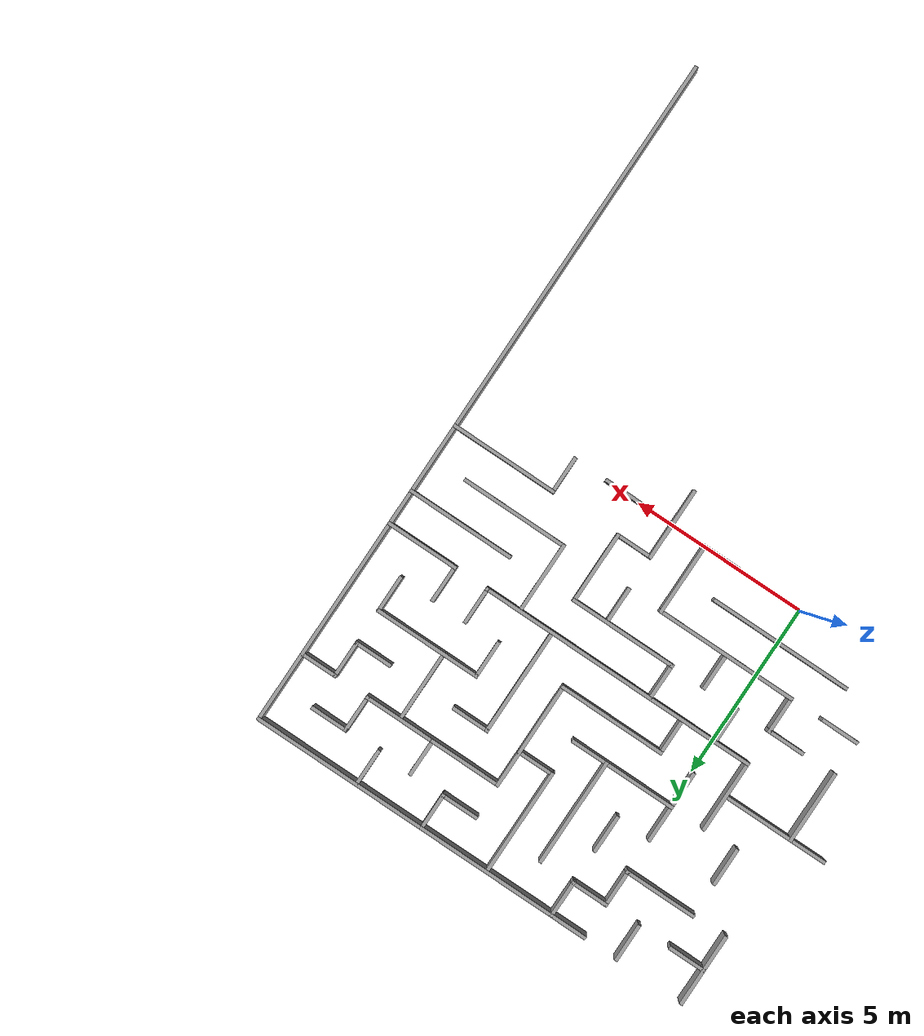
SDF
<sdf version="1.7">
 <model name="turtlebot3_maze_3">
  <link name="Wall_0">
   <collision name="Wall_0_Collision">
    <geometry><box><size>4.1 0.1 0.4</size></box></geometry>
    <pose>0 0 0.2 0 -0 0</pose>
   </collision>
   <visual name="Wall_0_Visual">
    <pose>0 0 0.2 0 -0 0</pose>
    <geometry><box><size>4.1 0.1 0.4</size></box></geometry>
    <material>
     <script><uri>file://media/materials/scripts/gazebo.material</uri><name>Gazebo/Grey</name></script>
     <ambient>1 1 1 1</ambient>
    </material>
    <meta><layer>0</layer></meta>
   </visual>
   <pose>0 1 0 0 -0 3.14159</pose>
  </link>
  <link name="Wall_11">
   <collision name="Wall_11_Collision">
    <geometry><box><size>1.1 0.1 0.4</size></box></geometry>
    <pose>0 0 0.2 0 -0 0</pose>
   </collision>
   <visual name="Wall_11_Visual">
    <pose>0 0 0.2 0 -0 0</pose>
    <geometry><box><size>1.1 0.1 0.4</size></box></geometry>
    <material>
     <script><uri>file://media/materials/scripts/gazebo.material</uri><name>Gazebo/Grey</name></script>
     <ambient>1 1 1 1</ambient>
    </material>
    <meta><layer>0</layer></meta>
   </visual>
   <pose>-2.5 2 0 0 -0 0</pose>
  </link>
  <link name="Wall_144">
   <collision name="Wall_144_Collision">
    <geometry><box><size>1.1 0.1 0.4</size></box></geometry>
    <pose>0 0 0.2 0 -0 0</pose>
   </collision>
   <visual name="Wall_144_Visual">
    <pose>0 0 0.2 0 -0 0</pose>
    <geometry><box><size>1.1 0.1 0.4</size></box></geometry>
    <material>
     <script><uri>file://media/materials/scripts/gazebo.material</uri><name>Gazebo/Grey</name></script>
     <ambient>1 1 1 1</ambient>
    </material>
    <meta><layer>0</layer></meta>
   </visual>
   <pose>1 7.5 0 0 -0 1.5708</pose>
  </link>
  <link name="Wall_151">
   <collision name="Wall_151_Collision">
    <geometry><box><size>2.1 0.1 0.4</size></box></geometry>
    <pose>0 0 0.2 0 -0 0</pose>
   </collision>
   <visual name="Wall_151_Visual">
    <pose>0 0 0.2 0 -0 0</pose>
    <geometry><box><size>2.1 0.1 0.4</size></box></geometry>
    <material>
     <script><uri>file://media/materials/scripts/gazebo.material</uri><name>Gazebo/Grey</name></script>
     <ambient>1 1 1 1</ambient>
    </material>
    <meta><layer>0</layer></meta>
   </visual>
   <pose>-3 4 0 0 -0 1.5708</pose>
  </link>
  <link name="Wall_153">
   <collision name="Wall_153_Collision">
    <geometry><box><size>1.1 0.1 0.4</size></box></geometry>
    <pose>0 0 0.2 0 -0 0</pose>
   </collision>
   <visual name="Wall_153_Visual">
    <pose>0 0 0.2 0 -0 0</pose>
    <geometry><box><size>1.1 0.1 0.4</size></box></geometry>
    <material>
     <script><uri>file://media/materials/scripts/gazebo.material</uri><name>Gazebo/Grey</name></script>
     <ambient>1 1 1 1</ambient>
    </material>
    <meta><layer>0</layer></meta>
   </visual>
   <pose>7 4.5 0 0 -0 -1.5708</pose>
  </link>
  <link name="Wall_154">
   <collision name="Wall_154_Collision">
    <geometry><box><size>8.1 0.1 0.4</size></box></geometry>
    <pose>0 0 0.2 0 -0 0</pose>
   </collision>
   <visual name="Wall_154_Visual">
    <pose>0 0 0.2 0 -0 0</pose>
    <geometry><box><size>8.1 0.1 0.4</size></box></geometry>
    <material>
     <script><uri>file://media/materials/scripts/gazebo.material</uri><name>Gazebo/Grey</name></script>
     <ambient>1 1 1 1</ambient>
    </material>
    <meta><layer>0</layer></meta>
   </visual>
   <pose>3 4 0 0 -0 3.14159</pose>
  </link>
  <link name="Wall_155">
   <collision name="Wall_155_Collision">
    <geometry><box><size>2.1 0.1 0.4</size></box></geometry>
    <pose>0 0 0.2 0 -0 0</pose>
   </collision>
   <visual name="Wall_155_Visual">
    <pose>0 0 0.2 0 -0 0</pose>
    <geometry><box><size>2.1 0.1 0.4</size></box></geometry>
    <material>
     <script><uri>file://media/materials/scripts/gazebo.material</uri><name>Gazebo/Grey</name></script>
     <ambient>1 1 1 1</ambient>
    </material>
    <meta><layer>0</layer></meta>
   </visual>
   <pose>-1 5 0 0 -0 1.5708</pose>
  </link>
  <link name="Wall_157">
   <collision name="Wall_157_Collision">
    <geometry><box><size>3.1 0.1 0.4</size></box></geometry>
    <pose>0 0 0.2 0 -0 0</pose>
   </collision>
   <visual name="Wall_157_Visual">
    <pose>0 0 0.2 0 -0 0</pose>
    <geometry><box><size>3.1 0.1 0.4</size></box></geometry>
    <material>
     <script><uri>file://media/materials/scripts/gazebo.material</uri><name>Gazebo/Grey</name></script>
     <ambient>1 1 1 1</ambient>
    </material>
    <meta><layer>0</layer></meta>
   </visual>
   <pose>-2.5 5 0 0 -0 0</pose>
  </link>
  <link name="Wall_179">
   <collision name="Wall_179_Collision">
    <geometry><box><size>1.1 0.1 0.4</size></box></geometry>
    <pose>0 0 0.2 0 -0 0</pose>
   </collision>
   <visual name="Wall_179_Visual">
    <pose>0 0 0.2 0 -0 0</pose>
    <geometry><box><size>1.1 0.1 0.4</size></box></geometry>
    <material>
     <script><uri>file://media/materials/scripts/gazebo.material</uri><name>Gazebo/Grey</name></script>
     <ambient>1 1 1 1</ambient>
    </material>
    <meta><layer>0</layer></meta>
   </visual>
   <pose>-1 9.5 0 0 -0 -1.5708</pose>
  </link>
  <link name="Wall_181">
   <collision name="Wall_181_Collision">
    <geometry><box><size>2.1 0.1 0.4</size></box></geometry>
    <pose>0 0 0.2 0 -0 0</pose>
   </collision>
   <visual name="Wall_181_Visual">
    <pose>0 0 0.2 0 -0 0</pose>
    <geometry><box><size>2.1 0.1 0.4</size></box></geometry>
    <material>
     <script><uri>file://media/materials/scripts/gazebo.material</uri><name>Gazebo/Grey</name></script>
     <ambient>1 1 1 1</ambient>
    </material>
    <meta><layer>0</layer></meta>
   </visual>
   <pose>-3 9 0 0 -0 -1.5708</pose>
  </link>
  <link name="Wall_183">
   <collision name="Wall_183_Collision">
    <geometry><box><size>1.1 0.1 0.4</size></box></geometry>
    <pose>0 0 0.2 0 -0 0</pose>
   </collision>
   <visual name="Wall_183_Visual">
    <pose>0 0 0.2 0 -0 0</pose>
    <geometry><box><size>1.1 0.1 0.4</size></box></geometry>
    <material>
     <script><uri>file://media/materials/scripts/gazebo.material</uri><name>Gazebo/Grey</name></script>
     <ambient>1 1 1 1</ambient>
    </material>
    <meta><layer>0</layer></meta>
   </visual>
   <pose>-2.5 9 0 0 -0 0</pose>
  </link>
  <link name="Wall_185">
   <collision name="Wall_185_Collision">
    <geometry><box><size>1.1 0.1 0.4</size></box></geometry>
    <pose>0 0 0.2 0 -0 0</pose>
   </collision>
   <visual name="Wall_185_Visual">
    <pose>0 0 0.2 0 -0 0</pose>
    <geometry><box><size>1.1 0.1 0.4</size></box></geometry>
    <material>
     <script><uri>file://media/materials/scripts/gazebo.material</uri><name>Gazebo/Grey</name></script>
     <ambient>1 1 1 1</ambient>
    </material>
    <meta><layer>0</layer></meta>
   </visual>
   <pose>1 9.5 0 0 -0 -1.5708</pose>
  </link>
  <link name="Wall_186">
   <collision name="Wall_186_Collision">
    <geometry><box><size>1.1 0.1 0.4</size></box></geometry>
    <pose>0 0 0.2 0 -0 0</pose>
   </collision>
   <visual name="Wall_186_Visual">
    <pose>0 0 0.2 0 -0 0</pose>
    <geometry><box><size>1.1 0.1 0.4</size></box></geometry>
    <material>
     <script><uri>file://media/materials/scripts/gazebo.material</uri><name>Gazebo/Grey</name></script>
     <ambient>1 1 1 1</ambient>
    </material>
    <meta><layer>0</layer></meta>
   </visual>
   <pose>0.5 9 0 0 -0 3.14159</pose>
  </link>
  <link name="Wall_187">
   <collision name="Wall_187_Collision">
    <geometry><box><size>1.1 0.1 0.4</size></box></geometry>
    <pose>0 0 0.2 0 -0 0</pose>
   </collision>
   <visual name="Wall_187_Visual">
    <pose>0 0 0.2 0 -0 0</pose>
    <geometry><box><size>1.1 0.1 0.4</size></box></geometry>
    <material>
     <script><uri>file://media/materials/scripts/gazebo.material</uri><name>Gazebo/Grey</name></script>
     <ambient>1 1 1 1</ambient>
    </material>
    <meta><layer>0</layer></meta>
   </visual>
   <pose>0 8.5 0 0 -0 -1.5708</pose>
  </link>
  <link name="Wall_188">
   <collision name="Wall_188_Collision">
    <geometry><box><size>2.1 0.1 0.4</size></box></geometry>
    <pose>0 0 0.2 0 -0 0</pose>
   </collision>
   <visual name="Wall_188_Visual">
    <pose>0 0 0.2 0 -0 0</pose>
    <geometry><box><size>2.1 0.1 0.4</size></box></geometry>
    <material>
     <script><uri>file://media/materials/scripts/gazebo.material</uri><name>Gazebo/Grey</name></script>
     <ambient>1 1 1 1</ambient>
    </material>
    <meta><layer>0</layer></meta>
   </visual>
   <pose>-1 8 0 0 -0 3.14159</pose>
  </link>
  <link name="Wall_194">
   <collision name="Wall_194_Collision">
    <geometry><box><size>1.1 0.1 0.4</size></box></geometry>
    <pose>0 0 0.2 0 -0 0</pose>
   </collision>
   <visual name="Wall_194_Visual">
    <pose>0 0 0.2 0 -0 0</pose>
    <geometry><box><size>1.1 0.1 0.4</size></box></geometry>
    <material>
     <script><uri>file://media/materials/scripts/gazebo.material</uri><name>Gazebo/Grey</name></script>
     <ambient>1 1 1 1</ambient>
    </material>
    <meta><layer>0</layer></meta>
   </visual>
   <pose>-2 6.5 0 0 -0 -1.5708</pose>
  </link>
  <link name="Wall_196">
   <collision name="Wall_196_Collision">
    <geometry><box><size>10.1 0.1 0.4</size></box></geometry>
    <pose>0 0 0.2 0 -0 0</pose>
   </collision>
   <visual name="Wall_196_Visual">
    <pose>0 0 0.2 0 -0 0</pose>
    <geometry><box><size>10.1 0.1 0.4</size></box></geometry>
    <material>
     <script><uri>file://media/materials/scripts/gazebo.material</uri><name>Gazebo/Grey</name></script>
     <ambient>1 1 1 1</ambient>
    </material>
    <meta><layer>0</layer></meta>
   </visual>
   <pose>5 10 0 0 -0 3.14159</pose>
  </link>
  <link name="Wall_198">
   <collision name="Wall_198_Collision">
    <geometry><box><size>3.1 0.1 0.4</size></box></geometry>
    <pose>0 0 0.2 0 -0 0</pose>
   </collision>
   <visual name="Wall_198_Visual">
    <pose>0 0 0.2 0 -0 0</pose>
    <geometry><box><size>3.1 0.1 0.4</size></box></geometry>
    <material>
     <script><uri>file://media/materials/scripts/gazebo.material</uri><name>Gazebo/Grey</name></script>
     <ambient>1 1 1 1</ambient>
    </material>
    <meta><layer>0</layer></meta>
   </visual>
   <pose>2 7.5 0 0 -0 -1.5708</pose>
  </link>
  <link name="Wall_2">
   <collision name="Wall_2_Collision">
    <geometry><box><size>1.1 0.1 0.4</size></box></geometry>
    <pose>0 0 0.2 0 -0 0</pose>
   </collision>
   <visual name="Wall_2_Visual">
    <pose>0 0 0.2 0 -0 0</pose>
    <geometry><box><size>1.1 0.1 0.4</size></box></geometry>
    <material>
     <script><uri>file://media/materials/scripts/gazebo.material</uri><name>Gazebo/Grey</name></script>
     <ambient>1 1 1 1</ambient>
    </material>
    <meta><layer>0</layer></meta>
   </visual>
   <pose>2.5 0 0 0 -0 0</pose>
  </link>
  <link name="Wall_200">
   <collision name="Wall_200_Collision">
    <geometry><box><size>3.1 0.1 0.4</size></box></geometry>
    <pose>0 0 0.2 0 -0 0</pose>
   </collision>
   <visual name="Wall_200_Visual">
    <pose>0 0 0.2 0 -0 0</pose>
    <geometry><box><size>3.1 0.1 0.4</size></box></geometry>
    <material>
     <script><uri>file://media/materials/scripts/gazebo.material</uri><name>Gazebo/Grey</name></script>
     <ambient>1 1 1 1</ambient>
    </material>
    <meta><layer>0</layer></meta>
   </visual>
   <pose>1.5 6 0 0 -0 3.14159</pose>
  </link>
  <link name="Wall_202">
   <collision name="Wall_202_Collision">
    <geometry><box><size>2.1 0.1 0.4</size></box></geometry>
    <pose>0 0 0.2 0 -0 0</pose>
   </collision>
   <visual name="Wall_202_Visual">
    <pose>0 0 0.2 0 -0 0</pose>
    <geometry><box><size>2.1 0.1 0.4</size></box></geometry>
    <material>
     <script><uri>file://media/materials/scripts/gazebo.material</uri><name>Gazebo/Grey</name></script>
     <ambient>1 1 1 1</ambient>
    </material>
    <meta><layer>0</layer></meta>
   </visual>
   <pose>0 6 0 0 -0 -1.5708</pose>
  </link>
  <link name="Wall_204">
   <collision name="Wall_204_Collision">
    <geometry><box><size>1.1 0.1 0.4</size></box></geometry>
    <pose>0 0 0.2 0 -0 0</pose>
   </collision>
   <visual name="Wall_204_Visual">
    <pose>0 0 0.2 0 -0 0</pose>
    <geometry><box><size>1.1 0.1 0.4</size></box></geometry>
    <material>
     <script><uri>file://media/materials/scripts/gazebo.material</uri><name>Gazebo/Grey</name></script>
     <ambient>1 1 1 1</ambient>
    </material>
    <meta><layer>0</layer></meta>
   </visual>
   <pose>1 4.5 0 0 -0 1.5708</pose>
  </link>
  <link name="Wall_205">
   <collision name="Wall_205_Collision">
    <geometry><box><size>3.1 0.1 0.4</size></box></geometry>
    <pose>0 0 0.2 0 -0 0</pose>
   </collision>
   <visual name="Wall_205_Visual">
    <pose>0 0 0.2 0 -0 0</pose>
    <geometry><box><size>3.1 0.1 0.4</size></box></geometry>
    <material>
     <script><uri>file://media/materials/scripts/gazebo.material</uri><name>Gazebo/Grey</name></script>
     <ambient>1 1 1 1</ambient>
    </material>
    <meta><layer>0</layer></meta>
   </visual>
   <pose>2.5 5 0 0 -0 0</pose>
  </link>
  <link name="Wall_206">
   <collision name="Wall_206_Collision">
    <geometry><box><size>3.1 0.1 0.4</size></box></geometry>
    <pose>0 0 0.2 0 -0 0</pose>
   </collision>
   <visual name="Wall_206_Visual">
    <pose>0 0 0.2 0 -0 0</pose>
    <geometry><box><size>3.1 0.1 0.4</size></box></geometry>
    <material>
     <script><uri>file://media/materials/scripts/gazebo.material</uri><name>Gazebo/Grey</name></script>
     <ambient>1 1 1 1</ambient>
    </material>
    <meta><layer>0</layer></meta>
   </visual>
   <pose>4 6.5 0 0 -0 1.5708</pose>
  </link>
  <link name="Wall_207">
   <collision name="Wall_207_Collision">
    <geometry><box><size>4.1 0.1 0.4</size></box></geometry>
    <pose>0 0 0.2 0 -0 0</pose>
   </collision>
   <visual name="Wall_207_Visual">
    <pose>0 0 0.2 0 -0 0</pose>
    <geometry><box><size>4.1 0.1 0.4</size></box></geometry>
    <material>
     <script><uri>file://media/materials/scripts/gazebo.material</uri><name>Gazebo/Grey</name></script>
     <ambient>1 1 1 1</ambient>
    </material>
    <meta><layer>0</layer></meta>
   </visual>
   <pose>6 8 0 0 -0 0</pose>
  </link>
  <link name="Wall_208">
   <collision name="Wall_208_Collision">
    <geometry><box><size>1.1 0.1 0.4</size></box></geometry>
    <pose>0 0 0.2 0 -0 0</pose>
   </collision>
   <visual name="Wall_208_Visual">
    <pose>0 0 0.2 0 -0 0</pose>
    <geometry><box><size>1.1 0.1 0.4</size></box></geometry>
    <material>
     <script><uri>file://media/materials/scripts/gazebo.material</uri><name>Gazebo/Grey</name></script>
     <ambient>1 1 1 1</ambient>
    </material>
    <meta><layer>0</layer></meta>
   </visual>
   <pose>8 8.5 0 0 -0 1.5708</pose>
  </link>
  <link name="Wall_209">
   <collision name="Wall_209_Collision">
    <geometry><box><size>1.1 0.1 0.4</size></box></geometry>
    <pose>0 0 0.2 0 -0 0</pose>
   </collision>
   <visual name="Wall_209_Visual">
    <pose>0 0 0.2 0 -0 0</pose>
    <geometry><box><size>1.1 0.1 0.4</size></box></geometry>
    <material>
     <script><uri>file://media/materials/scripts/gazebo.material</uri><name>Gazebo/Grey</name></script>
     <ambient>1 1 1 1</ambient>
    </material>
    <meta><layer>0</layer></meta>
   </visual>
   <pose>8.5 9 0 0 -0 0</pose>
  </link>
  <link name="Wall_211">
   <collision name="Wall_211_Collision">
    <geometry><box><size>1.1 0.1 0.4</size></box></geometry>
    <pose>0 0 0.2 0 -0 0</pose>
   </collision>
   <visual name="Wall_211_Visual">
    <pose>0 0 0.2 0 -0 0</pose>
    <geometry><box><size>1.1 0.1 0.4</size></box></geometry>
    <material>
     <script><uri>file://media/materials/scripts/gazebo.material</uri><name>Gazebo/Grey</name></script>
     <ambient>1 1 1 1</ambient>
    </material>
    <meta><layer>0</layer></meta>
   </visual>
   <pose>7 9.5 0 0 -0 -1.5708</pose>
  </link>
  <link name="Wall_213">
   <collision name="Wall_213_Collision">
    <geometry><box><size>1.1 0.1 0.4</size></box></geometry>
    <pose>0 0 0.2 0 -0 0</pose>
   </collision>
   <visual name="Wall_213_Visual">
    <pose>0 0 0.2 0 -0 0</pose>
    <geometry><box><size>1.1 0.1 0.4</size></box></geometry>
    <material>
     <script><uri>file://media/materials/scripts/gazebo.material</uri><name>Gazebo/Grey</name></script>
     <ambient>1 1 1 1</ambient>
    </material>
    <meta><layer>0</layer></meta>
   </visual>
   <pose>6 8.5 0 0 -0 -1.5708</pose>
  </link>
  <link name="Wall_215">
   <collision name="Wall_215_Collision">
    <geometry><box><size>1.1 0.1 0.4</size></box></geometry>
    <pose>0 0 0.2 0 -0 0</pose>
   </collision>
   <visual name="Wall_215_Visual">
    <pose>0 0 0.2 0 -0 0</pose>
    <geometry><box><size>1.1 0.1 0.4</size></box></geometry>
    <material>
     <script><uri>file://media/materials/scripts/gazebo.material</uri><name>Gazebo/Grey</name></script>
     <ambient>1 1 1 1</ambient>
    </material>
    <meta><layer>0</layer></meta>
   </visual>
   <pose>5 9.5 0 0 -0 -1.5708</pose>
  </link>
  <link name="Wall_216">
   <collision name="Wall_216_Collision">
    <geometry><box><size>1.1 0.1 0.4</size></box></geometry>
    <pose>0 0 0.2 0 -0 0</pose>
   </collision>
   <visual name="Wall_216_Visual">
    <pose>0 0 0.2 0 -0 0</pose>
    <geometry><box><size>1.1 0.1 0.4</size></box></geometry>
    <material>
     <script><uri>file://media/materials/scripts/gazebo.material</uri><name>Gazebo/Grey</name></script>
     <ambient>1 1 1 1</ambient>
    </material>
    <meta><layer>0</layer></meta>
   </visual>
   <pose>4.5 9 0 0 -0 3.14159</pose>
  </link>
  <link name="Wall_219">
   <collision name="Wall_219_Collision">
    <geometry><box><size>1.1 0.1 0.4</size></box></geometry>
    <pose>0 0 0.2 0 -0 0</pose>
   </collision>
   <visual name="Wall_219_Visual">
    <pose>0 0 0.2 0 -0 0</pose>
    <geometry><box><size>1.1 0.1 0.4</size></box></geometry>
    <material>
     <script><uri>file://media/materials/scripts/gazebo.material</uri><name>Gazebo/Grey</name></script>
     <ambient>1 1 1 1</ambient>
    </material>
    <meta><layer>0</layer></meta>
   </visual>
   <pose>3.5 7 0 0 -0 0</pose>
  </link>
  <link name="Wall_221">
   <collision name="Wall_221_Collision">
    <geometry><box><size>1.1 0.1 0.4</size></box></geometry>
    <pose>0 0 0.2 0 -0 0</pose>
   </collision>
   <visual name="Wall_221_Visual">
    <pose>0 0 0.2 0 -0 0</pose>
    <geometry><box><size>1.1 0.1 0.4</size></box></geometry>
    <material>
     <script><uri>file://media/materials/scripts/gazebo.material</uri><name>Gazebo/Grey</name></script>
     <ambient>1 1 1 1</ambient>
    </material>
    <meta><layer>0</layer></meta>
   </visual>
   <pose>9.5 8 0 0 -0 3.14159</pose>
  </link>
  <link name="Wall_222">
   <collision name="Wall_222_Collision">
    <geometry><box><size>1.1 0.1 0.4</size></box></geometry>
    <pose>0 0 0.2 0 -0 0</pose>
   </collision>
   <visual name="Wall_222_Visual">
    <pose>0 0 0.2 0 -0 0</pose>
    <geometry><box><size>1.1 0.1 0.4</size></box></geometry>
    <material>
     <script><uri>file://media/materials/scripts/gazebo.material</uri><name>Gazebo/Grey</name></script>
     <ambient>1 1 1 1</ambient>
    </material>
    <meta><layer>0</layer></meta>
   </visual>
   <pose>9 7.5 0 0 -0 -1.5708</pose>
  </link>
  <link name="Wall_223">
   <collision name="Wall_223_Collision">
    <geometry><box><size>1.1 0.1 0.4</size></box></geometry>
    <pose>0 0 0.2 0 -0 0</pose>
   </collision>
   <visual name="Wall_223_Visual">
    <pose>0 0 0.2 0 -0 0</pose>
    <geometry><box><size>1.1 0.1 0.4</size></box></geometry>
    <material>
     <script><uri>file://media/materials/scripts/gazebo.material</uri><name>Gazebo/Grey</name></script>
     <ambient>1 1 1 1</ambient>
    </material>
    <meta><layer>0</layer></meta>
   </visual>
   <pose>8.5 7 0 0 -0 3.14159</pose>
  </link>
  <link name="Wall_225">
   <collision name="Wall_225_Collision">
    <geometry><box><size>1.1 0.1 0.4</size></box></geometry>
    <pose>0 0 0.2 0 -0 0</pose>
   </collision>
   <visual name="Wall_225_Visual">
    <pose>0 0 0.2 0 -0 0</pose>
    <geometry><box><size>1.1 0.1 0.4</size></box></geometry>
    <material>
     <script><uri>file://media/materials/scripts/gazebo.material</uri><name>Gazebo/Grey</name></script>
     <ambient>1 1 1 1</ambient>
    </material>
    <meta><layer>0</layer></meta>
   </visual>
   <pose>5.5 7 0 0 -0 3.14159</pose>
  </link>
  <link name="Wall_226">
   <collision name="Wall_226_Collision">
    <geometry><box><size>3.1 0.1 0.4</size></box></geometry>
    <pose>0 0 0.2 0 -0 0</pose>
   </collision>
   <visual name="Wall_226_Visual">
    <pose>0 0 0.2 0 -0 0</pose>
    <geometry><box><size>3.1 0.1 0.4</size></box></geometry>
    <material>
     <script><uri>file://media/materials/scripts/gazebo.material</uri><name>Gazebo/Grey</name></script>
     <ambient>1 1 1 1</ambient>
    </material>
    <meta><layer>0</layer></meta>
   </visual>
   <pose>5 5.5 0 0 -0 -1.5708</pose>
  </link>
  <link name="Wall_228">
   <collision name="Wall_228_Collision">
    <geometry><box><size>1.1 0.1 0.4</size></box></geometry>
    <pose>0 0 0.2 0 -0 0</pose>
   </collision>
   <visual name="Wall_228_Visual">
    <pose>0 0 0.2 0 -0 0</pose>
    <geometry><box><size>1.1 0.1 0.4</size></box></geometry>
    <material>
     <script><uri>file://media/materials/scripts/gazebo.material</uri><name>Gazebo/Grey</name></script>
     <ambient>1 1 1 1</ambient>
    </material>
    <meta><layer>0</layer></meta>
   </visual>
   <pose>6 5.5 0 0 -0 1.5708</pose>
  </link>
  <link name="Wall_229">
   <collision name="Wall_229_Collision">
    <geometry><box><size>3.1 0.1 0.4</size></box></geometry>
    <pose>0 0 0.2 0 -0 0</pose>
   </collision>
   <visual name="Wall_229_Visual">
    <pose>0 0 0.2 0 -0 0</pose>
    <geometry><box><size>3.1 0.1 0.4</size></box></geometry>
    <material>
     <script><uri>file://media/materials/scripts/gazebo.material</uri><name>Gazebo/Grey</name></script>
     <ambient>1 1 1 1</ambient>
    </material>
    <meta><layer>0</layer></meta>
   </visual>
   <pose>7.5 6 0 0 -0 0</pose>
  </link>
  <link name="Wall_230">
   <collision name="Wall_230_Collision">
    <geometry><box><size>1.1 0.1 0.4</size></box></geometry>
    <pose>0 0 0.2 0 -0 0</pose>
   </collision>
   <visual name="Wall_230_Visual">
    <pose>0 0 0.2 0 -0 0</pose>
    <geometry><box><size>1.1 0.1 0.4</size></box></geometry>
    <material>
     <script><uri>file://media/materials/scripts/gazebo.material</uri><name>Gazebo/Grey</name></script>
     <ambient>1 1 1 1</ambient>
    </material>
    <meta><layer>0</layer></meta>
   </visual>
   <pose>9 5.5 0 0 -0 -1.5708</pose>
  </link>
  <link name="Wall_232">
   <collision name="Wall_232_Collision">
    <geometry><box><size>2.1 0.1 0.4</size></box></geometry>
    <pose>0 0 0.2 0 -0 0</pose>
   </collision>
   <visual name="Wall_232_Visual">
    <pose>0 0 0.2 0 -0 0</pose>
    <geometry><box><size>2.1 0.1 0.4</size></box></geometry>
    <material>
     <script><uri>file://media/materials/scripts/gazebo.material</uri><name>Gazebo/Grey</name></script>
     <ambient>1 1 1 1</ambient>
    </material>
    <meta><layer>0</layer></meta>
   </visual>
   <pose>7 7 0 0 -0 1.5708</pose>
  </link>
  <link name="Wall_234">
   <collision name="Wall_234_Collision">
    <geometry><box><size>1.1 0.1 0.4</size></box></geometry>
    <pose>0 0 0.2 0 -0 0</pose>
   </collision>
   <visual name="Wall_234_Visual">
    <pose>0 0 0.2 0 -0 0</pose>
    <geometry><box><size>1.1 0.1 0.4</size></box></geometry>
    <material>
     <script><uri>file://media/materials/scripts/gazebo.material</uri><name>Gazebo/Grey</name></script>
     <ambient>1 1 1 1</ambient>
    </material>
    <meta><layer>0</layer></meta>
   </visual>
   <pose>8 4.5 0 0 -0 -1.5708</pose>
  </link>
  <link name="Wall_235">
   <collision name="Wall_235_Collision">
    <geometry><box><size>2.1 0.1 0.4</size></box></geometry>
    <pose>0 0 0.2 0 -0 0</pose>
   </collision>
   <visual name="Wall_235_Visual">
    <pose>0 0 0.2 0 -0 0</pose>
    <geometry><box><size>2.1 0.1 0.4</size></box></geometry>
    <material>
     <script><uri>file://media/materials/scripts/gazebo.material</uri><name>Gazebo/Grey</name></script>
     <ambient>1 1 1 1</ambient>
    </material>
    <meta><layer>0</layer></meta>
   </visual>
   <pose>9 4 0 0 -0 0</pose>
  </link>
  <link name="Wall_237">
   <collision name="Wall_237_Collision">
    <geometry><box><size>3.1 0.1 0.4</size></box></geometry>
    <pose>0 0 0.2 0 -0 0</pose>
   </collision>
   <visual name="Wall_237_Visual">
    <pose>0 0 0.2 0 -0 0</pose>
    <geometry><box><size>3.1 0.1 0.4</size></box></geometry>
    <material>
     <script><uri>file://media/materials/scripts/gazebo.material</uri><name>Gazebo/Grey</name></script>
     <ambient>1 1 1 1</ambient>
    </material>
    <meta><layer>0</layer></meta>
   </visual>
   <pose>8.5 3 0 0 -0 0</pose>
  </link>
  <link name="Wall_239">
   <collision name="Wall_239_Collision">
    <geometry><box><size>2.1 0.1 0.4</size></box></geometry>
    <pose>0 0 0.2 0 -0 0</pose>
   </collision>
   <visual name="Wall_239_Visual">
    <pose>0 0 0.2 0 -0 0</pose>
    <geometry><box><size>2.1 0.1 0.4</size></box></geometry>
    <material>
     <script><uri>file://media/materials/scripts/gazebo.material</uri><name>Gazebo/Grey</name></script>
     <ambient>1 1 1 1</ambient>
    </material>
    <meta><layer>0</layer></meta>
   </visual>
   <pose>6 3 0 0 -0 -1.5708</pose>
  </link>
  <link name="Wall_240">
   <collision name="Wall_240_Collision">
    <geometry><box><size>3.1 0.1 0.4</size></box></geometry>
    <pose>0 0 0.2 0 -0 0</pose>
   </collision>
   <visual name="Wall_240_Visual">
    <pose>0 0 0.2 0 -0 0</pose>
    <geometry><box><size>3.1 0.1 0.4</size></box></geometry>
    <material>
     <script><uri>file://media/materials/scripts/gazebo.material</uri><name>Gazebo/Grey</name></script>
     <ambient>1 1 1 1</ambient>
    </material>
    <meta><layer>0</layer></meta>
   </visual>
   <pose>7.5 2 0 0 -0 0</pose>
  </link>
  <link name="Wall_242">
   <collision name="Wall_242_Collision">
    <geometry><box><size>3.1 0.1 0.4</size></box></geometry>
    <pose>0 0 0.2 0 -0 0</pose>
   </collision>
   <visual name="Wall_242_Visual">
    <pose>0 0 0.2 0 -0 0</pose>
    <geometry><box><size>3.1 0.1 0.4</size></box></geometry>
    <material>
     <script><uri>file://media/materials/scripts/gazebo.material</uri><name>Gazebo/Grey</name></script>
     <ambient>1 1 1 1</ambient>
    </material>
    <meta><layer>0</layer></meta>
   </visual>
   <pose>3 8.5 0 0 -0 1.5708</pose>
  </link>
  <link name="Wall_244">
   <collision name="Wall_244_Collision">
    <geometry><box><size>1.1 0.1 0.4</size></box></geometry>
    <pose>0 0 0.2 0 -0 0</pose>
   </collision>
   <visual name="Wall_244_Visual">
    <pose>0 0 0.2 0 -0 0</pose>
    <geometry><box><size>1.1 0.1 0.4</size></box></geometry>
    <material>
     <script><uri>file://media/materials/scripts/gazebo.material</uri><name>Gazebo/Grey</name></script>
     <ambient>1 1 1 1</ambient>
    </material>
    <meta><layer>0</layer></meta>
   </visual>
   <pose>0 3.5 0 0 -0 -1.5708</pose>
  </link>
  <link name="Wall_246">
   <collision name="Wall_246_Collision">
    <geometry><box><size>1.1 0.1 0.4</size></box></geometry>
    <pose>0 0 0.2 0 -0 0</pose>
   </collision>
   <visual name="Wall_246_Visual">
    <pose>0 0 0.2 0 -0 0</pose>
    <geometry><box><size>1.1 0.1 0.4</size></box></geometry>
    <material>
     <script><uri>file://media/materials/scripts/gazebo.material</uri><name>Gazebo/Grey</name></script>
     <ambient>1 1 1 1</ambient>
    </material>
    <meta><layer>0</layer></meta>
   </visual>
   <pose>1 2.5 0 0 -0 -1.5708</pose>
  </link>
  <link name="Wall_248">
   <collision name="Wall_248_Collision">
    <geometry><box><size>1.1 0.1 0.4</size></box></geometry>
    <pose>0 0 0.2 0 -0 0</pose>
   </collision>
   <visual name="Wall_248_Visual">
    <pose>0 0 0.2 0 -0 0</pose>
    <geometry><box><size>1.1 0.1 0.4</size></box></geometry>
    <material>
     <script><uri>file://media/materials/scripts/gazebo.material</uri><name>Gazebo/Grey</name></script>
     <ambient>1 1 1 1</ambient>
    </material>
    <meta><layer>0</layer></meta>
   </visual>
   <pose>2 3.5 0 0 -0 -1.5708</pose>
  </link>
  <link name="Wall_249">
   <collision name="Wall_249_Collision">
    <geometry><box><size>3.1 0.1 0.4</size></box></geometry>
    <pose>0 0 0.2 0 -0 0</pose>
   </collision>
   <visual name="Wall_249_Visual">
    <pose>0 0 0.2 0 -0 0</pose>
    <geometry><box><size>3.1 0.1 0.4</size></box></geometry>
    <material>
     <script><uri>file://media/materials/scripts/gazebo.material</uri><name>Gazebo/Grey</name></script>
     <ambient>1 1 1 1</ambient>
    </material>
    <meta><layer>0</layer></meta>
   </visual>
   <pose>3.5 3 0 0 -0 0</pose>
  </link>
  <link name="Wall_250">
   <collision name="Wall_250_Collision">
    <geometry><box><size>2.1 0.1 0.4</size></box></geometry>
    <pose>0 0 0.2 0 -0 0</pose>
   </collision>
   <visual name="Wall_250_Visual">
    <pose>0 0 0.2 0 -0 0</pose>
    <geometry><box><size>2.1 0.1 0.4</size></box></geometry>
    <material>
     <script><uri>file://media/materials/scripts/gazebo.material</uri><name>Gazebo/Grey</name></script>
     <ambient>1 1 1 1</ambient>
    </material>
    <meta><layer>0</layer></meta>
   </visual>
   <pose>5 2 0 0 -0 -1.5708</pose>
  </link>
  <link name="Wall_251">
   <collision name="Wall_251_Collision">
    <geometry><box><size>1.1 0.1 0.4</size></box></geometry>
    <pose>0 0 0.2 0 -0 0</pose>
   </collision>
   <visual name="Wall_251_Visual">
    <pose>0 0 0.2 0 -0 0</pose>
    <geometry><box><size>1.1 0.1 0.4</size></box></geometry>
    <material>
     <script><uri>file://media/materials/scripts/gazebo.material</uri><name>Gazebo/Grey</name></script>
     <ambient>1 1 1 1</ambient>
    </material>
    <meta><layer>0</layer></meta>
   </visual>
   <pose>4.5 1 0 0 -0 3.14159</pose>
  </link>
  <link name="Wall_252">
   <collision name="Wall_252_Collision">
    <geometry><box><size>2.1 0.1 0.4</size></box></geometry>
    <pose>0 0 0.2 0 -0 0</pose>
   </collision>
   <visual name="Wall_252_Visual">
    <pose>0 0 0.2 0 -0 0</pose>
    <geometry><box><size>2.1 0.1 0.4</size></box></geometry>
    <material>
     <script><uri>file://media/materials/scripts/gazebo.material</uri><name>Gazebo/Grey</name></script>
     <ambient>1 1 1 1</ambient>
    </material>
    <meta><layer>0</layer></meta>
   </visual>
   <pose>4 0 0 0 -0 -1.5708</pose>
  </link>
  <link name="Wall_254">
   <collision name="Wall_254_Collision">
    <geometry><box><size>1.1 0.1 0.4</size></box></geometry>
    <pose>0 0 0.2 0 -0 0</pose>
   </collision>
   <visual name="Wall_254_Visual">
    <pose>0 0 0.2 0 -0 0</pose>
    <geometry><box><size>1.1 0.1 0.4</size></box></geometry>
    <material>
     <script><uri>file://media/materials/scripts/gazebo.material</uri><name>Gazebo/Grey</name></script>
     <ambient>1 1 1 1</ambient>
    </material>
    <meta><layer>0</layer></meta>
   </visual>
   <pose>4 2.5 0 0 -0 -1.5708</pose>
  </link>
  <link name="Wall_256">
   <collision name="Wall_256_Collision">
    <geometry><box><size>3.1 0.1 0.4</size></box></geometry>
    <pose>0 0 0.2 0 -0 0</pose>
   </collision>
   <visual name="Wall_256_Visual">
    <pose>0 0 0.2 0 -0 0</pose>
    <geometry><box><size>3.1 0.1 0.4</size></box></geometry>
    <material>
     <script><uri>file://media/materials/scripts/gazebo.material</uri><name>Gazebo/Grey</name></script>
     <ambient>1 1 1 1</ambient>
    </material>
    <meta><layer>0</layer></meta>
   </visual>
   <pose>8.5 1 0 0 -0 3.14159</pose>
  </link>
  <link name="Wall_257">
   <collision name="Wall_257_Collision">
    <geometry><box><size>1.1 0.1 0.4</size></box></geometry>
    <pose>0 0 0.2 0 -0 0</pose>
   </collision>
   <visual name="Wall_257_Visual">
    <pose>0 0 0.2 0 -0 0</pose>
    <geometry><box><size>1.1 0.1 0.4</size></box></geometry>
    <material>
     <script><uri>file://media/materials/scripts/gazebo.material</uri><name>Gazebo/Grey</name></script>
     <ambient>1 1 1 1</ambient>
    </material>
    <meta><layer>0</layer></meta>
   </visual>
   <pose>7 0.5 0 0 -0 -1.5708</pose>
  </link>
  <link name="Wall_261">
   <collision name="Wall_261_Collision">
    <geometry><box><size>1.1 0.1 0.4</size></box></geometry>
    <pose>0 0 0.2 0 -0 0</pose>
   </collision>
   <visual name="Wall_261_Visual">
    <pose>0 0 0.2 0 -0 0</pose>
    <geometry><box><size>1.1 0.1 0.4</size></box></geometry>
    <material>
     <script><uri>file://media/materials/scripts/gazebo.material</uri><name>Gazebo/Grey</name></script>
     <ambient>1 1 1 1</ambient>
    </material>
    <meta><layer>0</layer></meta>
   </visual>
   <pose>5.5 0 0 0 -0 0</pose>
  </link>
  <link name="Wall_3">
   <collision name="Wall_3_Collision">
    <geometry><box><size>2.1 0.1 0.4</size></box></geometry>
    <pose>0 0 0.2 0 -0 0</pose>
   </collision>
   <visual name="Wall_3_Visual">
    <pose>0 0 0.2 0 -0 0</pose>
    <geometry><box><size>2.1 0.1 0.4</size></box></geometry>
    <material>
     <script><uri>file://media/materials/scripts/gazebo.material</uri><name>Gazebo/Grey</name></script>
     <ambient>1 1 1 1</ambient>
    </material>
    <meta><layer>0</layer></meta>
   </visual>
   <pose>3 1 0 0 -0 1.5708</pose>
  </link>
  <link name="Wall_4">
   <collision name="Wall_4_Collision">
    <geometry><box><size>4.1 0.1 0.4</size></box></geometry>
    <pose>0 0 0.2 0 -0 0</pose>
   </collision>
   <visual name="Wall_4_Visual">
    <pose>0 0 0.2 0 -0 0</pose>
    <geometry><box><size>4.1 0.1 0.4</size></box></geometry>
    <material>
     <script><uri>file://media/materials/scripts/gazebo.material</uri><name>Gazebo/Grey</name></script>
     <ambient>1 1 1 1</ambient>
    </material>
    <meta><layer>0</layer></meta>
   </visual>
   <pose>1 2 0 0 -0 3.14159</pose>
  </link>
  <link name="Wall_5">
   <collision name="Wall_5_Collision">
    <geometry><box><size>1.1 0.1 0.4</size></box></geometry>
    <pose>0 0 0.2 0 -0 0</pose>
   </collision>
   <visual name="Wall_5_Visual">
    <pose>0 0 0.2 0 -0 0</pose>
    <geometry><box><size>1.1 0.1 0.4</size></box></geometry>
    <material>
     <script><uri>file://media/materials/scripts/gazebo.material</uri><name>Gazebo/Grey</name></script>
     <ambient>1 1 1 1</ambient>
    </material>
    <meta><layer>0</layer></meta>
   </visual>
   <pose>-1 2.5 0 0 -0 1.5708</pose>
  </link>
  <link name="Wall_59">
   <collision name="Wall_59_Collision">
    <geometry><box><size>20.1 0.1 0.4</size></box></geometry>
    <pose>0 0 0.2 0 -0 0</pose>
   </collision>
   <visual name="Wall_59_Visual">
    <pose>0 0 0.2 0 -0 0</pose>
    <geometry><box><size>20.1 0.1 0.4</size></box></geometry>
    <material>
     <script><uri>file://media/materials/scripts/gazebo.material</uri><name>Gazebo/Grey</name></script>
     <ambient>1 1 1 1</ambient>
    </material>
    <meta><layer>0</layer></meta>
   </visual>
   <pose>10 0 0 0 -0 1.5708</pose>
  </link>
  <link name="Wall_6">
   <collision name="Wall_6_Collision">
    <geometry><box><size>1.1 0.1 0.4</size></box></geometry>
    <pose>0 0 0.2 0 -0 0</pose>
   </collision>
   <visual name="Wall_6_Visual">
    <pose>0 0 0.2 0 -0 0</pose>
    <geometry><box><size>1.1 0.1 0.4</size></box></geometry>
    <material>
     <script><uri>file://media/materials/scripts/gazebo.material</uri><name>Gazebo/Grey</name></script>
     <ambient>1 1 1 1</ambient>
    </material>
    <meta><layer>0</layer></meta>
   </visual>
   <pose>-1.5 3 0 0 -0 3.14159</pose>
  </link>
  <static>1</static>
 </model>
</sdf>
